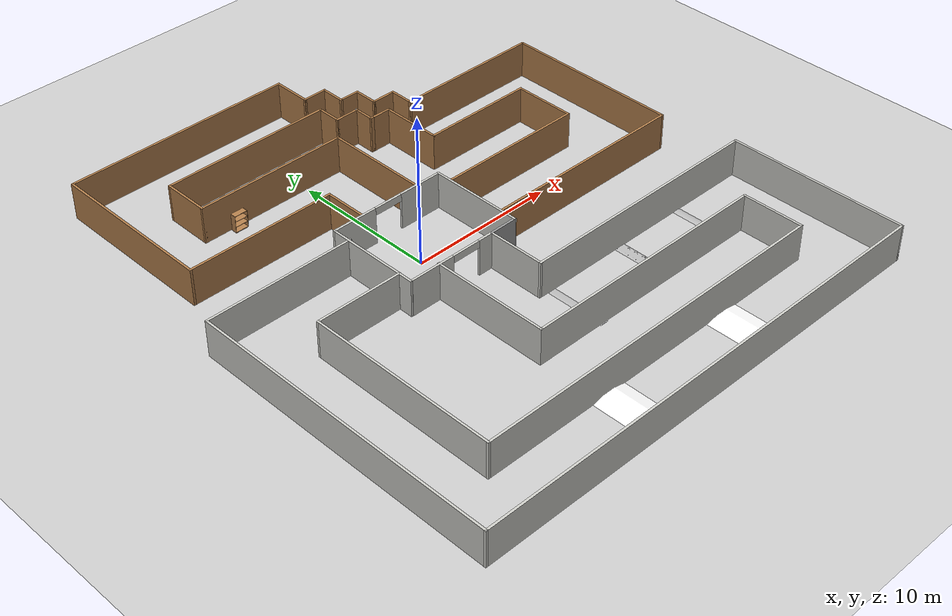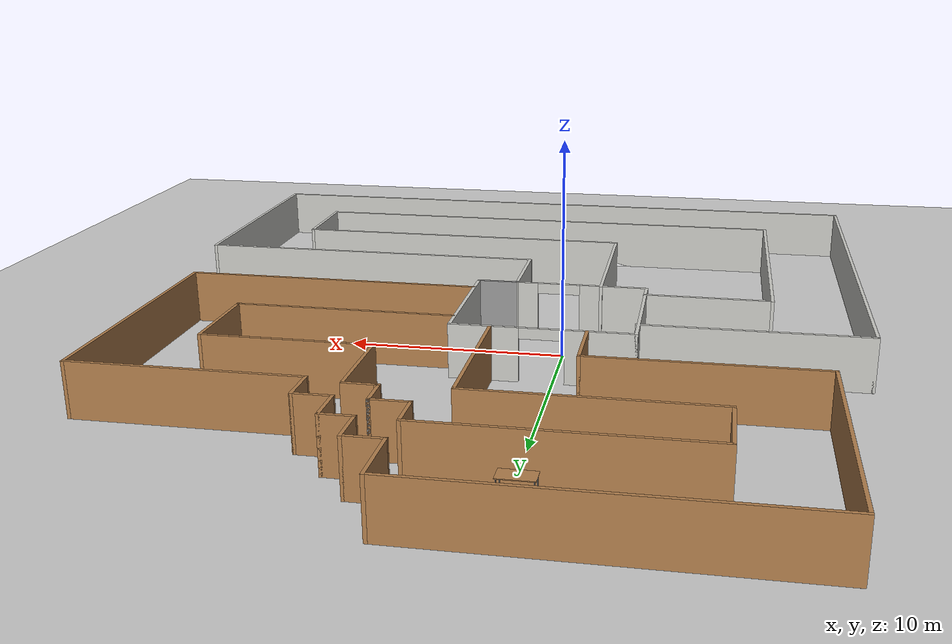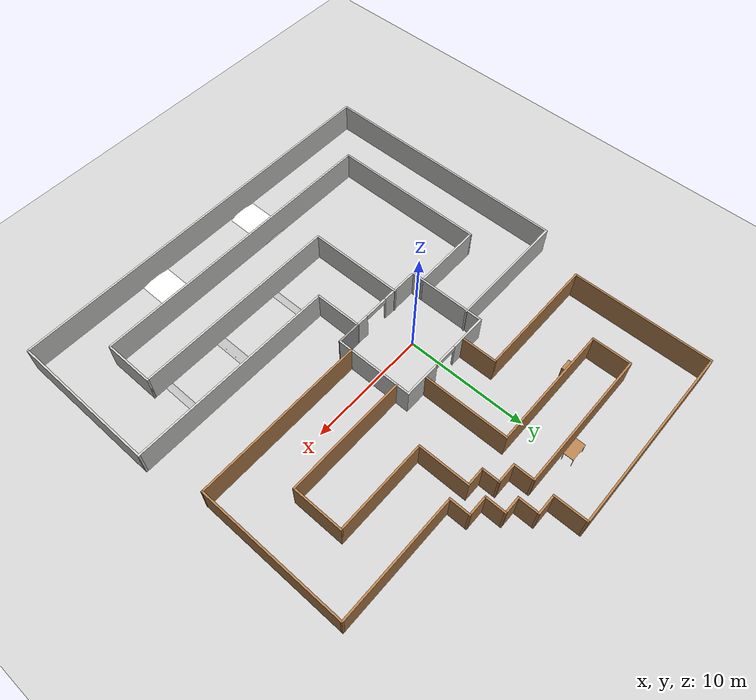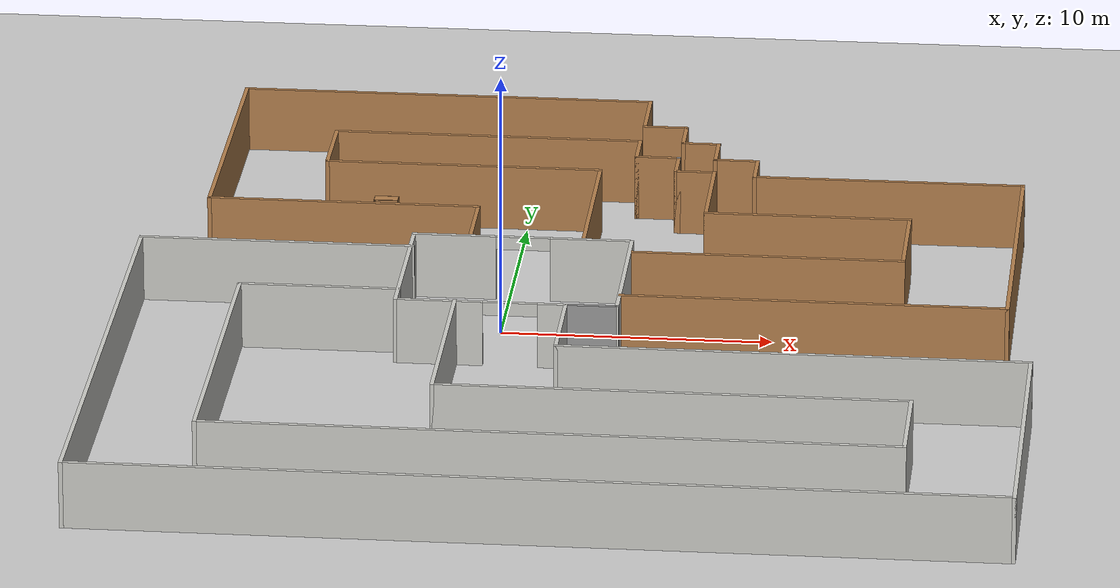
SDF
<sdf version="1.7">
 <world name="default">
  <light name="sun" type="directional">
   <pose>0 0 10 0 -0 0</pose>
   <diffuse>0.8 0.8 0.8 1</diffuse>
   <specular>0.2 0.2 0.2 1</specular>
   <attenuation>
    <range>1000</range>
    <constant>0.9</constant>
    <linear>0.01</linear>
    <quadratic>0.001</quadratic>
   </attenuation>
   <direction>-0.5 0.1 -0.9</direction>
   <spot><inner_angle>0</inner_angle><outer_angle>0</outer_angle><falloff>0</falloff></spot>
  </light>
  <model name="ground_plane">
   <static>1</static>
   <link name="link">
    <collision name="collision">
     <geometry><plane><normal>0 0 1</normal><size>100 100</size></plane></geometry>
     <surface><friction><ode><mu>100</mu><mu2>50</mu2></ode></friction></surface>
    </collision>
    <visual name="visual">
     <cast_shadows>0</cast_shadows>
     <geometry><plane><normal>0 0 1</normal><size>100 100</size></plane></geometry>
     <material>
      <script><uri>file://media/materials/scripts/gazebo.material</uri><name>Gazebo/Grey</name></script>
     </material>
    </visual>
   </link>
  </model>
  <gravity>0 0 -9.8</gravity>
  <magnetic_field>6e-06 2.3e-05 -4.2e-05</magnetic_field>
  <atmosphere type="adiabatic"/>
  <physics type="ode">
   <max_step_size>0.001</max_step_size>
   <real_time_factor>1</real_time_factor>
   <real_time_update_rate>1000</real_time_update_rate>
  </physics>
  <scene><ambient>0.4 0.4 0.4 1</ambient><background>0.7 0.7 0.7 1</background><shadows>1</shadows></scene>
  <audio><device>default</device></audio>
  <spherical_coordinates>
   <surface_model>EARTH_WGS84</surface_model>
   <latitude_deg>0</latitude_deg>
   <longitude_deg>0</longitude_deg>
   <elevation>0</elevation>
   <heading_deg>0</heading_deg>
  </spherical_coordinates>
  <model name="indoor_no_doors_2">
   <pose>3.07878 -0.765747 0 0 -0 0</pose>
   <link name="Wall_1">
    <collision name="Wall_1_Collision">
     <geometry><box><size>33.5 0.15 2.5</size></box></geometry>
     <pose>0 0 1.25 0 -0 0</pose>
    </collision>
    <visual name="Wall_1_Visual">
     <pose>0 0 1.25 0 -0 0</pose>
     <geometry><box><size>33.5 0.15 2.5</size></box></geometry>
     <material>
      <script><uri>file://media/materials/scripts/gazebo.material</uri><name>Gazebo/CeilingTiled</name></script>
      <ambient>1 1 1 1</ambient>
     </material>
     <meta><layer>0</layer></meta>
    </visual>
    <pose>1e-06 -18.2804 0 0 -0 0</pose>
   </link>
   <link name="Wall_10">
    <collision name="Wall_10_Collision">
     <geometry><box><size>25.25 0.15 2.5</size></box></geometry>
     <pose>0 0 1.25 0 -0 0</pose>
    </collision>
    <visual name="Wall_10_Visual">
     <pose>0 0 1.25 0 -0 0</pose>
     <geometry><box><size>25.25 0.15 2.5</size></box></geometry>
     <material>
      <script><uri>file://media/materials/scripts/gazebo.material</uri><name>Gazebo/CeilingTiled</name></script>
      <ambient>1 1 1 1</ambient>
     </material>
     <meta><layer>0</layer></meta>
    </visual>
    <pose>0.064266 -14.2262 0 0 -0 3.14159</pose>
   </link>
   <link name="Wall_11">
    <collision name="Wall_11_Collision">
     <geometry><box><size>13 0.15 2.5</size></box></geometry>
     <pose>0 0 1.25 0 -0 0</pose>
    </collision>
    <visual name="Wall_11_Visual">
     <pose>0 0 1.25 0 -0 0</pose>
     <geometry><box><size>13 0.15 2.5</size></box></geometry>
     <material>
      <script><uri>file://media/materials/scripts/gazebo.material</uri><name>Gazebo/CeilingTiled</name></script>
      <ambient>1 1 1 1</ambient>
     </material>
     <meta><layer>0</layer></meta>
    </visual>
    <pose>-12.4857 -7.80119 0 0 -0 1.5708</pose>
   </link>
   <link name="Wall_12">
    <collision name="Wall_12_Collision">
     <geometry><box><size>6 0.15 2.5</size></box></geometry>
     <pose>0 0 1.25 0 -0 0</pose>
    </collision>
    <visual name="Wall_12_Visual">
     <pose>0 0 1.25 0 -0 0</pose>
     <geometry><box><size>6 0.15 2.5</size></box></geometry>
     <material>
      <script><uri>file://media/materials/scripts/gazebo.material</uri><name>Gazebo/CeilingTiled</name></script>
      <ambient>1 1 1 1</ambient>
     </material>
     <meta><layer>0</layer></meta>
    </visual>
    <pose>-9.56073 -1.37619 0 0 -0 0</pose>
   </link>
   <link name="Wall_14">
    <collision name="Wall_14_Collision">
     <geometry><box><size>21.25 0.15 2.5</size></box></geometry>
     <pose>0 0 1.25 0 -0 0</pose>
    </collision>
    <visual name="Wall_14_Visual">
     <pose>0 0 1.25 0 -0 0</pose>
     <geometry><box><size>21.25 0.15 2.5</size></box></geometry>
     <material>
      <script><uri>file://media/materials/scripts/gazebo.material</uri><name>Gazebo/CeilingTiled</name></script>
      <ambient>1 1 1 1</ambient>
     </material>
     <meta><layer>0</layer></meta>
    </visual>
    <pose>-16.675 -7.73042 0 0 -0 1.5708</pose>
   </link>
   <link name="Wall_15">
    <collision name="Wall_15_Collision">
     <geometry><box><size>10.25 0.15 2.5</size></box></geometry>
     <pose>0 0 1.25 0 -0 0</pose>
    </collision>
    <visual name="Wall_15_Visual">
     <pose>0 0 1.25 0 -0 0</pose>
     <geometry><box><size>10.25 0.15 2.5</size></box></geometry>
     <material>
      <script><uri>file://media/materials/scripts/gazebo.material</uri><name>Gazebo/CeilingTiled</name></script>
      <ambient>1 1 1 1</ambient>
     </material>
     <meta><layer>0</layer></meta>
    </visual>
    <pose>-11.625 2.81958 0 0 -0 0</pose>
   </link>
   <link name="Wall_17">
    <collision name="Wall_17_Collision">
     <geometry><box><size>6.5 0.15 2.5</size></box></geometry>
     <pose>0 0 1.25 0 -0 0</pose>
    </collision>
    <visual name="Wall_17_Visual">
     <pose>0 0 1.25 0 -0 0</pose>
     <geometry><box><size>6.5 0.15 2.5</size></box></geometry>
     <material>
      <script><uri>file://media/materials/scripts/gazebo.material</uri><name>Gazebo/CeilingTiled</name></script>
      <ambient>1 1 1 1</ambient>
     </material>
     <meta><layer>0</layer></meta>
    </visual>
    <pose>-6.65095 0.864976 0 0 -0 -1.5708</pose>
   </link>
   <link name="Wall_2">
    <collision name="Wall_2_Collision">
     <geometry><box><size>12.25 0.15 2.5</size></box></geometry>
     <pose>0 0 1.25 0 -0 0</pose>
    </collision>
    <visual name="Wall_2_Visual">
     <pose>0 0 1.25 0 -0 0</pose>
     <geometry><box><size>12.25 0.15 2.5</size></box></geometry>
     <material>
      <script><uri>file://media/materials/scripts/gazebo.material</uri><name>Gazebo/CeilingTiled</name></script>
      <ambient>1 1 1 1</ambient>
     </material>
     <meta><layer>0</layer></meta>
    </visual>
    <pose>16.675 -12.2304 0 0 -0 1.5708</pose>
   </link>
   <link name="Wall_24">
    <pose>-2.60095 4.03998 0 0 -0 0</pose>
    <visual name="Wall_24_Visual_0">
     <pose>-2.55487 0 1.25 0 -0 0</pose>
     <geometry><box><size>3.14026 0.15 2.5</size></box></geometry>
     <material>
      <script><uri>file://media/materials/scripts/gazebo.material</uri><name>Gazebo/CeilingTiled</name></script>
      <ambient>1 1 1 1</ambient>
     </material>
     <meta><layer>0</layer></meta>
    </visual>
    <collision name="Wall_24_Collision_0">
     <geometry><box><size>3.14026 0.15 2.5</size></box></geometry>
     <pose>-2.55487 0 1.25 0 -0 0</pose>
    </collision>
    <visual name="Wall_24_Visual_1">
     <pose>2.57013 0 1.25 0 -0 0</pose>
     <geometry><box><size>3.10974 0.15 2.5</size></box></geometry>
     <material>
      <script><uri>file://media/materials/scripts/gazebo.material</uri><name>Gazebo/CeilingTiled</name></script>
      <ambient>1 1 1 1</ambient>
     </material>
     <meta><layer>0</layer></meta>
    </visual>
    <collision name="Wall_24_Collision_1">
     <geometry><box><size>3.10974 0.15 2.5</size></box></geometry>
     <pose>2.57013 0 1.25 0 -0 0</pose>
    </collision>
    <visual name="Wall_24_Visual_2">
     <pose>0.015256 0 2.25 0 -0 0</pose>
     <geometry><box><size>2 0.15 0.5</size></box></geometry>
     <material>
      <script><uri>file://media/materials/scripts/gazebo.material</uri><name>Gazebo/CeilingTiled</name></script>
      <ambient>1 1 1 1</ambient>
     </material>
     <meta><layer>0</layer></meta>
    </visual>
    <collision name="Wall_24_Collision_2">
     <geometry><box><size>2 0.15 0.5</size></box></geometry>
     <pose>0.015256 0 2.25 0 -0 0</pose>
    </collision>
   </link>
   <link name="Wall_27">
    <collision name="Wall_27_Collision">
     <geometry><box><size>6.5 0.15 2.5</size></box></geometry>
     <pose>0 0 1.25 0 -0 0</pose>
    </collision>
    <visual name="Wall_27_Visual">
     <pose>0 0 1.25 0 -0 0</pose>
     <geometry><box><size>6.5 0.15 2.5</size></box></geometry>
     <material>
      <script><uri>file://media/materials/scripts/gazebo.material</uri><name>Gazebo/CeilingTiled</name></script>
      <ambient>1 1 1 1</ambient>
     </material>
     <meta><layer>0</layer></meta>
    </visual>
    <pose>1.44905 0.864976 0 0 -0 -1.5708</pose>
   </link>
   <link name="Wall_29">
    <collision name="Wall_29_Collision">
     <geometry><box><size>2.02416 0.15 2.5</size></box></geometry>
     <pose>0 0 1.25 0 -0 0</pose>
    </collision>
    <visual name="Wall_29_Visual">
     <pose>0 0 1.25 0 -0 0</pose>
     <geometry><box><size>2.02416 0.15 2.5</size></box></geometry>
     <material>
      <script><uri>file://media/materials/scripts/gazebo.material</uri><name>Gazebo/Grey</name></script>
      <ambient>1 1 1 1</ambient>
     </material>
     <meta><layer>0</layer></meta>
    </visual>
    <pose>0.512027 -2.32022 0 0 -0 -3.13071</pose>
   </link>
   <link name="Wall_3">
    <collision name="Wall_3_Collision">
     <geometry><box><size>17.25 0.15 2.5</size></box></geometry>
     <pose>0 0 1.25 0 -0 0</pose>
    </collision>
    <visual name="Wall_3_Visual">
     <pose>0 0 1.25 0 -0 0</pose>
     <geometry><box><size>17.25 0.15 2.5</size></box></geometry>
     <material>
      <script><uri>file://media/materials/scripts/gazebo.material</uri><name>Gazebo/CeilingTiled</name></script>
      <ambient>1 1 1 1</ambient>
     </material>
     <meta><layer>0</layer></meta>
    </visual>
    <pose>8.125 -6.18042 0 0 -0 3.14159</pose>
   </link>
   <link name="Wall_31">
    <collision name="Wall_31_Collision">
     <geometry><box><size>14.25 0.15 2.5</size></box></geometry>
     <pose>0 0 1.25 0 -0 0</pose>
    </collision>
    <visual name="Wall_31_Visual">
     <pose>0 0 1.25 0 -0 0</pose>
     <geometry><box><size>14.25 0.15 2.5</size></box></geometry>
     <material>
      <script><uri>file://media/materials/scripts/gazebo.material</uri><name>Gazebo/Wood</name></script>
      <ambient>1 1 1 1</ambient>
     </material>
     <meta><layer>0</layer></meta>
    </visual>
    <pose>8.54753 -1.21958 0 0 -0 0</pose>
   </link>
   <link name="Wall_32">
    <collision name="Wall_32_Collision">
     <geometry><box><size>12.25 0.15 2.5</size></box></geometry>
     <pose>0 0 1.25 0 -0 0</pose>
    </collision>
    <visual name="Wall_32_Visual">
     <pose>0 0 1.25 0 -0 0</pose>
     <geometry><box><size>12.25 0.15 2.5</size></box></geometry>
     <material>
      <script><uri>file://media/materials/scripts/gazebo.material</uri><name>Gazebo/Wood</name></script>
      <ambient>1 1 1 1</ambient>
     </material>
     <meta><layer>0</layer></meta>
    </visual>
    <pose>15.5975 4.83042 0 0 -0 1.5708</pose>
   </link>
   <link name="Wall_33">
    <collision name="Wall_33_Collision">
     <geometry><box><size>10.25 0.15 2.5</size></box></geometry>
     <pose>0 0 1.25 0 -0 0</pose>
    </collision>
    <visual name="Wall_33_Visual">
     <pose>0 0 1.25 0 -0 0</pose>
     <geometry><box><size>10.25 0.15 2.5</size></box></geometry>
     <material>
      <script><uri>file://media/materials/scripts/gazebo.material</uri><name>Gazebo/Wood</name></script>
      <ambient>1 1 1 1</ambient>
     </material>
     <meta><layer>0</layer></meta>
    </visual>
    <pose>10.5475 10.8804 0 0 -0 3.14159</pose>
   </link>
   <link name="Wall_35">
    <collision name="Wall_35_Collision">
     <geometry><box><size>4.25 0.15 2.5</size></box></geometry>
     <pose>0 0 1.25 0 -0 0</pose>
    </collision>
    <visual name="Wall_35_Visual">
     <pose>0 0 1.25 0 -0 0</pose>
     <geometry><box><size>4.25 0.15 2.5</size></box></geometry>
     <material>
      <script><uri>file://media/materials/scripts/gazebo.material</uri><name>Gazebo/Wood</name></script>
      <ambient>1 1 1 1</ambient>
     </material>
     <meta><layer>0</layer></meta>
    </visual>
    <pose>3.95699 9.13887 0 0 -0 -1.5708</pose>
   </link>
   <link name="Wall_36">
    <collision name="Wall_36_Collision">
     <geometry><box><size>7.75 0.15 2.5</size></box></geometry>
     <pose>0 0 1.25 0 -0 0</pose>
    </collision>
    <visual name="Wall_36_Visual">
     <pose>0 0 1.25 0 -0 0</pose>
     <geometry><box><size>7.75 0.15 2.5</size></box></geometry>
     <material>
      <script><uri>file://media/materials/scripts/gazebo.material</uri><name>Gazebo/Wood</name></script>
      <ambient>1 1 1 1</ambient>
     </material>
     <meta><layer>0</layer></meta>
    </visual>
    <pose>7.75699 7.08887 0 0 -0 0</pose>
   </link>
   <link name="Wall_37">
    <collision name="Wall_37_Collision">
     <geometry><box><size>4.25 0.15 2.5</size></box></geometry>
     <pose>0 0 1.25 0 -0 0</pose>
    </collision>
    <visual name="Wall_37_Visual">
     <pose>0 0 1.25 0 -0 0</pose>
     <geometry><box><size>4.25 0.15 2.5</size></box></geometry>
     <material>
      <script><uri>file://media/materials/scripts/gazebo.material</uri><name>Gazebo/Wood</name></script>
      <ambient>1 1 1 1</ambient>
     </material>
     <meta><layer>0</layer></meta>
    </visual>
    <pose>11.557 5.03887 0 0 -0 -1.5708</pose>
   </link>
   <link name="Wall_38">
    <collision name="Wall_38_Collision">
     <geometry><box><size>10.25 0.15 2.5</size></box></geometry>
     <pose>0 0 1.25 0 -0 0</pose>
    </collision>
    <visual name="Wall_38_Visual">
     <pose>0 0 1.25 0 -0 0</pose>
     <geometry><box><size>10.25 0.15 2.5</size></box></geometry>
     <material>
      <script><uri>file://media/materials/scripts/gazebo.material</uri><name>Gazebo/Wood</name></script>
      <ambient>1 1 1 1</ambient>
     </material>
     <meta><layer>0</layer></meta>
    </visual>
    <pose>6.50699 2.98887 0 0 -0 3.14159</pose>
   </link>
   <link name="Wall_4">
    <collision name="Wall_4_Collision">
     <geometry><box><size>4 0.15 2.5</size></box></geometry>
     <pose>0 0 1.25 0 -0 0</pose>
    </collision>
    <visual name="Wall_4_Visual">
     <pose>0 0 1.25 0 -0 0</pose>
     <geometry><box><size>4 0.15 2.5</size></box></geometry>
     <material>
      <script><uri>file://media/materials/scripts/gazebo.material</uri><name>Gazebo/CeilingTiled</name></script>
      <ambient>1 1 1 1</ambient>
     </material>
     <meta><layer>0</layer></meta>
    </visual>
    <pose>-0.424999 -4.25542 0 0 -0 1.5708</pose>
   </link>
   <link name="Wall_40">
    <collision name="Wall_40_Collision">
     <geometry><box><size>1.5 0.15 2.5</size></box></geometry>
     <pose>0 0 1.25 0 -0 0</pose>
    </collision>
    <visual name="Wall_40_Visual">
     <pose>0 0 1.25 0 -0 0</pose>
     <geometry><box><size>1.5 0.15 2.5</size></box></geometry>
     <material>
      <script><uri>file://media/materials/scripts/gazebo.material</uri><name>Gazebo/Wood</name></script>
      <ambient>1 1 1 1</ambient>
     </material>
     <meta><layer>0</layer></meta>
    </visual>
    <pose>3.28199 11.1889 0 0 -0 3.14159</pose>
   </link>
   <link name="Wall_41">
    <collision name="Wall_41_Collision">
     <geometry><box><size>0.25 0.15 2.5</size></box></geometry>
     <pose>0 0 1.25 0 -0 0</pose>
    </collision>
    <visual name="Wall_41_Visual">
     <pose>0 0 1.25 0 -0 0</pose>
     <geometry><box><size>0.25 0.15 2.5</size></box></geometry>
     <material>
      <script><uri>file://media/materials/scripts/gazebo.material</uri><name>Gazebo/Wood</name></script>
      <ambient>1 1 1 1</ambient>
     </material>
     <meta><layer>0</layer></meta>
    </visual>
    <pose>2.55699 11.1889 0 0 -0 3.14159</pose>
   </link>
   <link name="Wall_42">
    <collision name="Wall_42_Collision">
     <geometry><box><size>1.5 0.15 2.5</size></box></geometry>
     <pose>0 0 1.25 0 -0 0</pose>
    </collision>
    <visual name="Wall_42_Visual">
     <pose>0 0 1.25 0 -0 0</pose>
     <geometry><box><size>1.5 0.15 2.5</size></box></geometry>
     <material>
      <script><uri>file://media/materials/scripts/gazebo.material</uri><name>Gazebo/Wood</name></script>
      <ambient>1 1 1 1</ambient>
     </material>
     <meta><layer>0</layer></meta>
    </visual>
    <pose>2.50699 11.8639 0 0 -0 1.5708</pose>
   </link>
   <link name="Wall_43">
    <collision name="Wall_43_Collision">
     <geometry><box><size>0.15 0.15 2.5</size></box></geometry>
     <pose>0 0 1.25 0 -0 0</pose>
    </collision>
    <visual name="Wall_43_Visual">
     <pose>0 0 1.25 0 -0 0</pose>
     <geometry><box><size>0.15 0.15 2.5</size></box></geometry>
     <material>
      <script><uri>file://media/materials/scripts/gazebo.material</uri><name>Gazebo/Grey</name></script>
      <ambient>1 1 1 1</ambient>
     </material>
     <meta><layer>0</layer></meta>
    </visual>
    <pose>2.50699 12.5389 0 0 -0 0</pose>
   </link>
   <link name="Wall_44">
    <collision name="Wall_44_Collision">
     <geometry><box><size>1.75 0.15 2.5</size></box></geometry>
     <pose>0 0 1.25 0 -0 0</pose>
    </collision>
    <visual name="Wall_44_Visual">
     <pose>0 0 1.25 0 -0 0</pose>
     <geometry><box><size>1.75 0.15 2.5</size></box></geometry>
     <material>
      <script><uri>file://media/materials/scripts/gazebo.material</uri><name>Gazebo/Wood</name></script>
      <ambient>1 1 1 1</ambient>
     </material>
     <meta><layer>0</layer></meta>
    </visual>
    <pose>1.70699 12.5389 0 0 -0 3.14159</pose>
   </link>
   <link name="Wall_46">
    <collision name="Wall_46_Collision">
     <geometry><box><size>1.75 0.15 2.5</size></box></geometry>
     <pose>0 0 1.25 0 -0 0</pose>
    </collision>
    <visual name="Wall_46_Visual">
     <pose>0 0 1.25 0 -0 0</pose>
     <geometry><box><size>1.75 0.15 2.5</size></box></geometry>
     <material>
      <script><uri>file://media/materials/scripts/gazebo.material</uri><name>Gazebo/Wood</name></script>
      <ambient>1 1 1 1</ambient>
     </material>
     <meta><layer>0</layer></meta>
    </visual>
    <pose>0.906992 13.3389 0 0 -0 1.5708</pose>
   </link>
   <link name="Wall_48">
    <collision name="Wall_48_Collision">
     <geometry><box><size>11.75 0.15 2.5</size></box></geometry>
     <pose>0 0 1.25 0 -0 0</pose>
    </collision>
    <visual name="Wall_48_Visual">
     <pose>0 0 1.25 0 -0 0</pose>
     <geometry><box><size>11.75 0.15 2.5</size></box></geometry>
     <material>
      <script><uri>file://media/materials/scripts/gazebo.material</uri><name>Gazebo/Wood</name></script>
      <ambient>1 1 1 1</ambient>
     </material>
     <meta><layer>0</layer></meta>
    </visual>
    <pose>-4.89301 14.1389 0 0 -0 3.14159</pose>
   </link>
   <link name="Wall_49">
    <collision name="Wall_49_Collision">
     <geometry><box><size>3.25 0.15 2.5</size></box></geometry>
     <pose>0 0 1.25 0 -0 0</pose>
    </collision>
    <visual name="Wall_49_Visual">
     <pose>0 0 1.25 0 -0 0</pose>
     <geometry><box><size>3.25 0.15 2.5</size></box></geometry>
     <material>
      <script><uri>file://media/materials/scripts/gazebo.material</uri><name>Gazebo/Wood</name></script>
      <ambient>1 1 1 1</ambient>
     </material>
     <meta><layer>0</layer></meta>
    </visual>
    <pose>-10.693 12.5889 0 0 -0 -1.5708</pose>
   </link>
   <link name="Wall_5">
    <pose>-3.475 -2.33042 0 0 -0 3.14159</pose>
    <visual name="Wall_5_Visual_0">
     <pose>-2.57115 0 1.25 0 -0 0</pose>
     <geometry><box><size>1.1077 0.15 2.5</size></box></geometry>
     <material>
      <script><uri>file://media/materials/scripts/gazebo.material</uri><name>Gazebo/CeilingTiled</name></script>
      <ambient>1 1 1 1</ambient>
     </material>
     <meta><layer>0</layer></meta>
    </visual>
    <collision name="Wall_5_Collision_0">
     <geometry><box><size>1.1077 0.15 2.5</size></box></geometry>
     <pose>-2.57115 0 1.25 0 -0 0</pose>
    </collision>
    <visual name="Wall_5_Visual_1">
     <pose>1.55385 0 1.25 0 -0 0</pose>
     <geometry><box><size>3.1423 0.15 2.5</size></box></geometry>
     <material>
      <script><uri>file://media/materials/scripts/gazebo.material</uri><name>Gazebo/CeilingTiled</name></script>
      <ambient>1 1 1 1</ambient>
     </material>
     <meta><layer>0</layer></meta>
    </visual>
    <collision name="Wall_5_Collision_1">
     <geometry><box><size>3.1423 0.15 2.5</size></box></geometry>
     <pose>1.55385 0 1.25 0 -0 0</pose>
    </collision>
    <visual name="Wall_5_Visual_2">
     <pose>-1.0173 0 2.25 0 -0 0</pose>
     <geometry><box><size>2 0.15 0.5</size></box></geometry>
     <material>
      <script><uri>file://media/materials/scripts/gazebo.material</uri><name>Gazebo/CeilingTiled</name></script>
      <ambient>1 1 1 1</ambient>
     </material>
     <meta><layer>0</layer></meta>
    </visual>
    <collision name="Wall_5_Collision_2">
     <geometry><box><size>2 0.15 0.5</size></box></geometry>
     <pose>-1.0173 0 2.25 0 -0 0</pose>
    </collision>
   </link>
   <link name="Wall_50">
    <collision name="Wall_50_Collision">
     <geometry><box><size>10.5 0.15 2.5</size></box></geometry>
     <pose>0 0 1.25 0 -0 0</pose>
    </collision>
    <visual name="Wall_50_Visual">
     <pose>0 0 1.25 0 -0 0</pose>
     <geometry><box><size>10.5 0.15 2.5</size></box></geometry>
     <material>
      <script><uri>file://media/materials/scripts/gazebo.material</uri><name>Gazebo/Wood</name></script>
      <ambient>1 1 1 1</ambient>
     </material>
     <meta><layer>0</layer></meta>
    </visual>
    <pose>-5.51801 11.0389 0 0 -0 0</pose>
   </link>
   <link name="Wall_52">
    <collision name="Wall_52_Collision">
     <geometry><box><size>7 0.15 2.5</size></box></geometry>
     <pose>0 0 1.25 0 -0 0</pose>
    </collision>
    <visual name="Wall_52_Visual">
     <pose>0 0 1.25 0 -0 0</pose>
     <geometry><box><size>7 0.15 2.5</size></box></geometry>
     <material>
      <script><uri>file://media/materials/scripts/gazebo.material</uri><name>Gazebo/Wood</name></script>
      <ambient>1 1 1 1</ambient>
     </material>
     <meta><layer>0</layer></meta>
    </visual>
    <pose>-0.343008 7.61387 0 0 -0 -1.5708</pose>
   </link>
   <link name="Wall_54">
    <collision name="Wall_54_Collision">
     <geometry><box><size>1.75 0.15 2.5</size></box></geometry>
     <pose>0 0 1.25 0 -0 0</pose>
    </collision>
    <visual name="Wall_54_Visual">
     <pose>0 0 1.25 0 -0 0</pose>
     <geometry><box><size>1.75 0.15 2.5</size></box></geometry>
     <material>
      <script><uri>file://media/materials/scripts/gazebo.material</uri><name>Gazebo/Wood</name></script>
      <ambient>1 1 1 1</ambient>
     </material>
     <meta><layer>0</layer></meta>
    </visual>
    <pose>5.49753 11.6804 0 0 -0 1.5708</pose>
   </link>
   <link name="Wall_55">
    <collision name="Wall_55_Collision">
     <geometry><box><size>1.75 0.15 2.5</size></box></geometry>
     <pose>0 0 1.25 0 -0 0</pose>
    </collision>
    <visual name="Wall_55_Visual">
     <pose>0 0 1.25 0 -0 0</pose>
     <geometry><box><size>1.75 0.15 2.5</size></box></geometry>
     <material>
      <script><uri>file://media/materials/scripts/gazebo.material</uri><name>Gazebo/Wood</name></script>
      <ambient>1 1 1 1</ambient>
     </material>
     <meta><layer>0</layer></meta>
    </visual>
    <pose>4.69753 12.4804 0 0 -0 3.14159</pose>
   </link>
   <link name="Wall_56">
    <collision name="Wall_56_Collision">
     <geometry><box><size>1.75 0.15 2.5</size></box></geometry>
     <pose>0 0 1.25 0 -0 0</pose>
    </collision>
    <visual name="Wall_56_Visual">
     <pose>0 0 1.25 0 -0 0</pose>
     <geometry><box><size>1.75 0.15 2.5</size></box></geometry>
     <material>
      <script><uri>file://media/materials/scripts/gazebo.material</uri><name>Gazebo/Wood</name></script>
      <ambient>1 1 1 1</ambient>
     </material>
     <meta><layer>0</layer></meta>
    </visual>
    <pose>3.89753 13.2804 0 0 -0 1.5708</pose>
   </link>
   <link name="Wall_57">
    <collision name="Wall_57_Collision">
     <geometry><box><size>1.5 0.15 2.5</size></box></geometry>
     <pose>0 0 1.25 0 -0 0</pose>
    </collision>
    <visual name="Wall_57_Visual">
     <pose>0 0 1.25 0 -0 0</pose>
     <geometry><box><size>1.5 0.15 2.5</size></box></geometry>
     <material>
      <script><uri>file://media/materials/scripts/gazebo.material</uri><name>Gazebo/Wood</name></script>
      <ambient>1 1 1 1</ambient>
     </material>
     <meta><layer>0</layer></meta>
    </visual>
    <pose>3.22253 14.0804 0 0 -0 3.14159</pose>
   </link>
   <link name="Wall_58">
    <collision name="Wall_58_Collision">
     <geometry><box><size>1.75 0.15 2.5</size></box></geometry>
     <pose>0 0 1.25 0 -0 0</pose>
    </collision>
    <visual name="Wall_58_Visual">
     <pose>0 0 1.25 0 -0 0</pose>
     <geometry><box><size>1.75 0.15 2.5</size></box></geometry>
     <material>
      <script><uri>file://media/materials/scripts/gazebo.material</uri><name>Gazebo/Wood</name></script>
      <ambient>1 1 1 1</ambient>
     </material>
     <meta><layer>0</layer></meta>
    </visual>
    <pose>2.54753 14.8804 0 0 -0 1.5708</pose>
   </link>
   <link name="Wall_59">
    <collision name="Wall_59_Collision">
     <geometry><box><size>1.75 0.15 2.5</size></box></geometry>
     <pose>0 0 1.25 0 -0 0</pose>
    </collision>
    <visual name="Wall_59_Visual">
     <pose>0 0 1.25 0 -0 0</pose>
     <geometry><box><size>1.75 0.15 2.5</size></box></geometry>
     <material>
      <script><uri>file://media/materials/scripts/gazebo.material</uri><name>Gazebo/Wood</name></script>
      <ambient>1 1 1 1</ambient>
     </material>
     <meta><layer>0</layer></meta>
    </visual>
    <pose>1.74753 15.6804 0 0 -0 3.14159</pose>
   </link>
   <link name="Wall_60">
    <collision name="Wall_60_Collision">
     <geometry><box><size>2.75 0.15 2.5</size></box></geometry>
     <pose>0 0 1.25 0 -0 0</pose>
    </collision>
    <visual name="Wall_60_Visual">
     <pose>0 0 1.25 0 -0 0</pose>
     <geometry><box><size>2.75 0.15 2.5</size></box></geometry>
     <material>
      <script><uri>file://media/materials/scripts/gazebo.material</uri><name>Gazebo/Wood</name></script>
      <ambient>1 1 1 1</ambient>
     </material>
     <meta><layer>0</layer></meta>
    </visual>
    <pose>0.94753 16.9804 0 0 -0 1.5708</pose>
   </link>
   <link name="Wall_61">
    <collision name="Wall_61_Collision">
     <geometry><box><size>15.75 0.15 2.5</size></box></geometry>
     <pose>0 0 1.25 0 -0 0</pose>
    </collision>
    <visual name="Wall_61_Visual">
     <pose>0 0 1.25 0 -0 0</pose>
     <geometry><box><size>15.75 0.15 2.5</size></box></geometry>
     <material>
      <script><uri>file://media/materials/scripts/gazebo.material</uri><name>Gazebo/Wood</name></script>
      <ambient>1 1 1 1</ambient>
     </material>
     <meta><layer>0</layer></meta>
    </visual>
    <pose>-6.85247 18.2804 0 0 -0 3.14159</pose>
   </link>
   <link name="Wall_62">
    <collision name="Wall_62_Collision">
     <geometry><box><size>11.5 0.15 2.5</size></box></geometry>
     <pose>0 0 1.25 0 -0 0</pose>
    </collision>
    <visual name="Wall_62_Visual">
     <pose>0 0 1.25 0 -0 0</pose>
     <geometry><box><size>11.5 0.15 2.5</size></box></geometry>
     <material>
      <script><uri>file://media/materials/scripts/gazebo.material</uri><name>Gazebo/Wood</name></script>
      <ambient>1 1 1 1</ambient>
     </material>
     <meta><layer>0</layer></meta>
    </visual>
    <pose>-14.6525 12.6054 0 0 -0 -1.5708</pose>
   </link>
   <link name="Wall_63">
    <collision name="Wall_63_Collision">
     <geometry><box><size>10.25 0.15 2.5</size></box></geometry>
     <pose>0 0 1.25 0 -0 0</pose>
    </collision>
    <visual name="Wall_63_Visual">
     <pose>0 0 1.25 0 -0 0</pose>
     <geometry><box><size>10.25 0.15 2.5</size></box></geometry>
     <material>
      <script><uri>file://media/materials/scripts/gazebo.material</uri><name>Gazebo/Wood</name></script>
      <ambient>1 1 1 1</ambient>
     </material>
     <meta><layer>0</layer></meta>
    </visual>
    <pose>-9.60247 6.93042 0 0 -0 0</pose>
   </link>
   <link name="Wall_65">
    <collision name="Wall_65_Collision">
     <geometry><box><size>3 0.15 2.5</size></box></geometry>
     <pose>0 0 1.25 0 -0 0</pose>
    </collision>
    <visual name="Wall_65_Visual">
     <pose>0 0 1.25 0 -0 0</pose>
     <geometry><box><size>3 0.15 2.5</size></box></geometry>
     <material>
      <script><uri>file://media/materials/scripts/gazebo.material</uri><name>Gazebo/Wood</name></script>
      <ambient>1 1 1 1</ambient>
     </material>
     <meta><layer>0</layer></meta>
    </visual>
    <pose>-4.55247 5.50542 0 0 -0 -1.5708</pose>
   </link>
   <link name="Wall_7">
    <collision name="Wall_7_Collision">
     <geometry><box><size>8 0.15 2.5</size></box></geometry>
     <pose>0 0 1.25 0 -0 0</pose>
    </collision>
    <visual name="Wall_7_Visual">
     <pose>0 0 1.25 0 -0 0</pose>
     <geometry><box><size>8 0.15 2.5</size></box></geometry>
     <material>
      <script><uri>file://media/materials/scripts/gazebo.material</uri><name>Gazebo/CeilingTiled</name></script>
      <ambient>1 1 1 1</ambient>
     </material>
     <meta><layer>0</layer></meta>
    </visual>
    <pose>-4.48573 -6.20119 0 0 -0 -1.5708</pose>
   </link>
   <link name="Wall_8">
    <collision name="Wall_8_Collision">
     <geometry><box><size>17.25 0.15 2.5</size></box></geometry>
     <pose>0 0 1.25 0 -0 0</pose>
    </collision>
    <visual name="Wall_8_Visual">
     <pose>0 0 1.25 0 -0 0</pose>
     <geometry><box><size>17.25 0.15 2.5</size></box></geometry>
     <material>
      <script><uri>file://media/materials/scripts/gazebo.material</uri><name>Gazebo/CeilingTiled</name></script>
      <ambient>1 1 1 1</ambient>
     </material>
     <meta><layer>0</layer></meta>
    </visual>
    <pose>4.06427 -10.1262 0 0 -0 0</pose>
   </link>
   <link name="Wall_9">
    <collision name="Wall_9_Collision">
     <geometry><box><size>4.25 0.15 2.5</size></box></geometry>
     <pose>0 0 1.25 0 -0 0</pose>
    </collision>
    <visual name="Wall_9_Visual">
     <pose>0 0 1.25 0 -0 0</pose>
     <geometry><box><size>4.25 0.15 2.5</size></box></geometry>
     <material>
      <script><uri>file://media/materials/scripts/gazebo.material</uri><name>Gazebo/CeilingTiled</name></script>
      <ambient>1 1 1 1</ambient>
     </material>
     <meta><layer>0</layer></meta>
    </visual>
    <pose>12.6143 -12.1762 0 0 -0 -1.5708</pose>
   </link>
   <static>1</static>
  </model>
  <model name="speed_bump_1_short">
   <static>1</static>
   <link name="link">
    <collision name="collision">
     <geometry><mesh><uri>model://speed_bump_1_short//bump_2_060.dae</uri></mesh></geometry>
     <surface><friction><ode><mu>0.9</mu><mu2>0.6</mu2></ode></friction></surface>
    </collision>
    <visual name="visual">
     <geometry><mesh><uri>model://speed_bump_1_short//bump_2_060.dae</uri></mesh></geometry>
    </visual>
   </link>
   <pose>3.85214 -11.0358 -0 0 -0 1.57405</pose>
  </model>
  <model name="speed_bump_2_short">
   <static>1</static>
   <link name="link">
    <collision name="collision">
     <geometry><mesh><uri>model://speed_bump_2_short//bump_1_060.dae</uri></mesh></geometry>
     <surface><friction><ode><mu>0.9</mu><mu2>0.6</mu2></ode></friction></surface>
    </collision>
    <visual name="visual">
     <geometry><mesh><uri>model://speed_bump_2_short//bump_1_060.dae</uri></mesh></geometry>
    </visual>
   </link>
   <pose>9.72068 -10.8812 0 0 -0 1.57001</pose>
  </model>
  <model name="speed_bump_3_short">
   <static>1</static>
   <link name="link">
    <collision name="collision">
     <geometry><mesh><uri>model://speed_bump_3_short//bump_3_060.dae</uri></mesh></geometry>
     <surface><friction><ode><mu>0.9</mu><mu2>0.6</mu2></ode></friction></surface>
    </collision>
    <visual name="visual">
     <geometry><mesh><uri>model://speed_bump_3_short//bump_3_060.dae</uri></mesh></geometry>
    </visual>
   </link>
   <pose>14.689 -10.9598 0 0 -0 1.57268</pose>
  </model>
  <model name="ramp_1">
   <static>1</static>
   <link name="link">
    <collision name="collision">
     <geometry><mesh><uri>model://ramp_1//ramp_015.dae</uri></mesh></geometry>
     <surface><friction><ode><mu>0.9</mu><mu2>0.6</mu2></ode></friction></surface>
    </collision>
    <visual name="visual"><geometry><mesh><uri>model://ramp_1//ramp_015.dae</uri></mesh></geometry></visual>
   </link>
   <pose>7.49951 -19.0303 0 0 -0 0</pose>
  </model>
  <model name="ramp_2">
   <static>1</static>
   <link name="link">
    <collision name="collision">
     <geometry><mesh><uri>model://ramp_2//ramp_020.dae</uri></mesh></geometry>
     <surface><friction><ode><mu>0.9</mu><mu2>0.6</mu2></ode></friction></surface>
    </collision>
    <visual name="visual"><geometry><mesh><uri>model://ramp_2//ramp_020.dae</uri></mesh></geometry></visual>
   </link>
   <pose>-1.77233 -18.9064 0 0 -0 0</pose>
  </model>
  <model name="bookshelf">
   <static>1</static>
   <link name="link">
    <inertial><mass>1</mass></inertial>
    <collision name="back">
     <pose>0 0.005 0.6 0 -0 0</pose>
     <geometry><box><size>0.9 0.01 1.2</size></box></geometry>
    </collision>
    <visual name="visual1">
     <pose>0 0.005 0.6 0 -0 0</pose>
     <geometry><box><size>0.9 0.01 1.2</size></box></geometry>
     <material>
      <script><uri>file://media/materials/scripts/gazebo.material</uri><name>Gazebo/Wood</name></script>
     </material>
    </visual>
    <collision name="left_side">
     <pose>0.45 -0.195 0.6 0 -0 0</pose>
     <geometry><box><size>0.02 0.4 1.2</size></box></geometry>
    </collision>
    <visual name="visual2">
     <pose>0.45 -0.195 0.6 0 -0 0</pose>
     <geometry><box><size>0.02 0.4 1.2</size></box></geometry>
     <material>
      <script><uri>file://media/materials/scripts/gazebo.material</uri><name>Gazebo/Wood</name></script>
     </material>
    </visual>
    <collision name="right_side">
     <pose>-0.45 -0.195 0.6 0 -0 0</pose>
     <geometry><box><size>0.02 0.4 1.2</size></box></geometry>
    </collision>
    <visual name="visual3">
     <pose>-0.45 -0.195 0.6 0 -0 0</pose>
     <geometry><box><size>0.02 0.4 1.2</size></box></geometry>
     <material>
      <script><uri>file://media/materials/scripts/gazebo.material</uri><name>Gazebo/Wood</name></script>
     </material>
    </visual>
    <collision name="bottom">
     <pose>0 -0.195 0.03 0 -0 0</pose>
     <geometry><box><size>0.88 0.4 0.06</size></box></geometry>
    </collision>
    <visual name="visual4">
     <pose>0 -0.195 0.03 0 -0 0</pose>
     <geometry><box><size>0.88 0.4 0.06</size></box></geometry>
     <material>
      <script><uri>file://media/materials/scripts/gazebo.material</uri><name>Gazebo/Wood</name></script>
     </material>
    </visual>
    <collision name="top">
     <pose>0 -0.195 1.19 0 -0 0</pose>
     <geometry><box><size>0.88 0.4 0.02</size></box></geometry>
    </collision>
    <visual name="visual5">
     <pose>0 -0.195 1.19 0 -0 0</pose>
     <geometry><box><size>0.88 0.4 0.02</size></box></geometry>
     <material>
      <script><uri>file://media/materials/scripts/gazebo.material</uri><name>Gazebo/Wood</name></script>
     </material>
    </visual>
    <collision name="low_shelf">
     <pose>0 -0.195 0.43 0 -0 0</pose>
     <geometry><box><size>0.88 0.4 0.02</size></box></geometry>
    </collision>
    <visual name="visual6">
     <pose>0 -0.195 0.43 0 -0 0</pose>
     <geometry><box><size>0.88 0.4 0.02</size></box></geometry>
     <material>
      <script><uri>file://media/materials/scripts/gazebo.material</uri><name>Gazebo/Wood</name></script>
     </material>
    </visual>
    <collision name="high_shelf">
     <pose>0 -0.195 0.8 0 -0 0</pose>
     <geometry><box><size>0.88 0.4 0.02</size></box></geometry>
    </collision>
    <visual name="visual7">
     <pose>0 -0.195 0.8 0 -0 0</pose>
     <geometry><box><size>0.88 0.4 0.02</size></box></geometry>
     <material>
      <script><uri>file://media/materials/scripts/gazebo.material</uri><name>Gazebo/Wood</name></script>
     </material>
    </visual>
   </link>
   <pose>-5.34137 10.1137 0 0 -0 0</pose>
  </model>
  <model name="table">
   <static>1</static>
   <link name="link">
    <collision name="surface">
     <pose>0 0 1 0 -0 0</pose>
     <geometry><box><size>1.5 0.8 0.03</size></box></geometry>
     <surface><friction><ode><mu>0.6</mu><mu2>0.6</mu2></ode></friction></surface>
    </collision>
    <visual name="visual1">
     <pose>0 0 1 0 -0 0</pose>
     <geometry><box><size>1.5 0.8 0.03</size></box></geometry>
     <material>
      <script><uri>file://media/materials/scripts/gazebo.material</uri><name>Gazebo/Wood</name></script>
     </material>
    </visual>
    <collision name="front_left_leg">
     <pose>0.68 0.38 0.5 0 -0 0</pose>
     <geometry><cylinder><radius>0.02</radius><length>1</length></cylinder></geometry>
    </collision>
    <visual name="front_left_leg">
     <pose>0.68 0.38 0.5 0 -0 0</pose>
     <geometry><cylinder><radius>0.02</radius><length>1</length></cylinder></geometry>
     <material>
      <script><uri>file://media/materials/scripts/gazebo.material</uri><name>Gazebo/Grey</name></script>
     </material>
    </visual>
    <collision name="front_right_leg">
     <pose>0.68 -0.38 0.5 0 -0 0</pose>
     <geometry><cylinder><radius>0.02</radius><length>1</length></cylinder></geometry>
    </collision>
    <visual name="front_right_leg">
     <pose>0.68 -0.38 0.5 0 -0 0</pose>
     <geometry><cylinder><radius>0.02</radius><length>1</length></cylinder></geometry>
     <material>
      <script><uri>file://media/materials/scripts/gazebo.material</uri><name>Gazebo/Grey</name></script>
     </material>
    </visual>
    <collision name="back_right_leg">
     <pose>-0.68 -0.38 0.5 0 -0 0</pose>
     <geometry><cylinder><radius>0.02</radius><length>1</length></cylinder></geometry>
    </collision>
    <visual name="back_right_leg">
     <pose>-0.68 -0.38 0.5 0 -0 0</pose>
     <geometry><cylinder><radius>0.02</radius><length>1</length></cylinder></geometry>
     <material>
      <script><uri>file://media/materials/scripts/gazebo.material</uri><name>Gazebo/Grey</name></script>
     </material>
    </visual>
    <collision name="back_left_leg">
     <pose>-0.68 0.38 0.5 0 -0 0</pose>
     <geometry><cylinder><radius>0.02</radius><length>1</length></cylinder></geometry>
    </collision>
    <visual name="back_left_leg">
     <pose>-0.68 0.38 0.5 0 -0 0</pose>
     <geometry><cylinder><radius>0.02</radius><length>1</length></cylinder></geometry>
     <material>
      <script><uri>file://media/materials/scripts/gazebo.material</uri><name>Gazebo/Grey</name></script>
     </material>
    </visual>
   </link>
   <pose>-0.30809 13.953 0 0 -0 0</pose>
  </model>
 </world>
</sdf>
